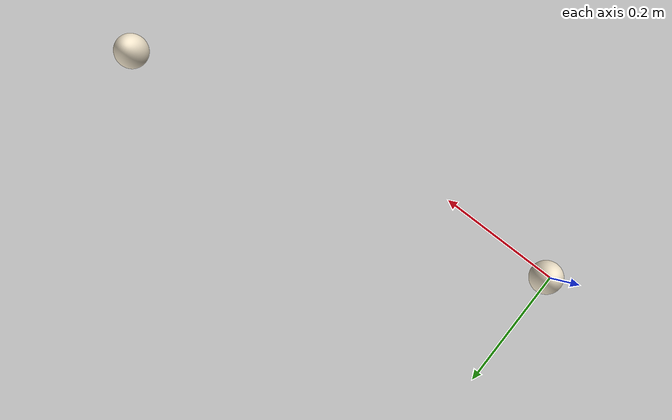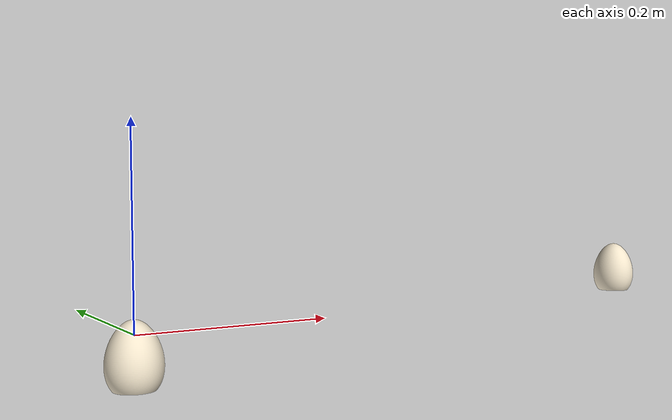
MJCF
<mujoco model="pnp_egg">
    <compiler angle="degree" coordinate="local" />
    <option timestep="0.01" gravity="0 0 -9.81"/>

    <asset>
        <mesh name="egg_vis" file="visual/egg.stl" scale="0.001 0.001 0.001" />
        <mesh name="egg_mesh" file="collision/egg.stl" scale="0.001 0.001 0.001" />
        <material name="mat" rgba="0.95 0.9 0.8 1" specular="0.0" shininess="0.1"/>
    </asset>

    <worldbody>
        <body>
            <body name="object" pos="0 0 -0.015">
                <geom solimp="0.998 0.998 0.001"
                      solref="0.001 1"
                      density="100"
                      friction="0.7 0.2 0.1"
                      type="mesh"
                      mesh="egg_vis"
                      conaffinity="0"
                      contype="0"
                      group="1"
                      material="mat" />

                <geom name="egg_geom"
                      type="mesh"
                      mesh="egg_mesh"
                      rgba="0.95 0.9 0.8 1"
                      mass="0.2"
                      group="0"/>
            </body>
            <site rgba="0 0 0 0" size="0.005" pos="1.8000000023832283e-09 0.0001579002000000018 -0.03245274" name="bottom_site"/>
            <site rgba="0 0 0 0" size="0.005" pos="1.8000000023832283e-09 0.0001579002000000018 0.033050489999999995" name="top_site"/>
            <site rgba="0 0 0 0" size="0.005" pos="0.05891761439999999 0.057567376799999986 0.0002988749999999995" name="horizontal_radius_site"/>
        </body>
    </worldbody>
</mujoco>
